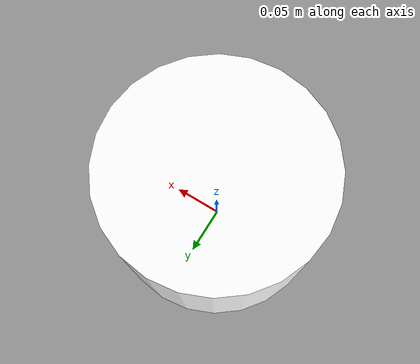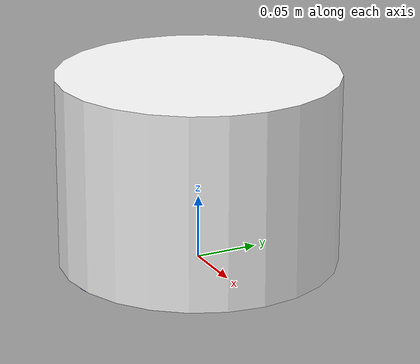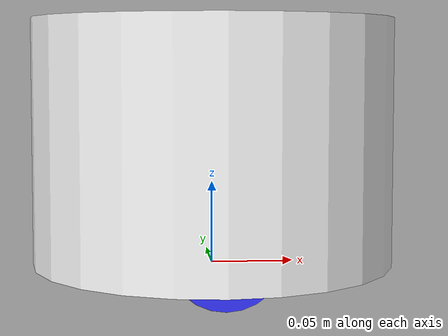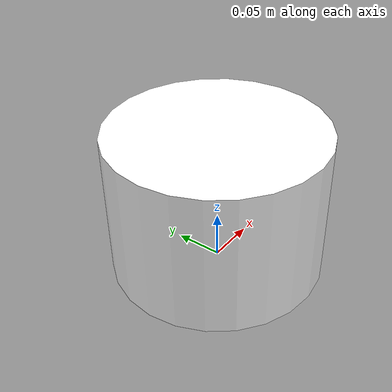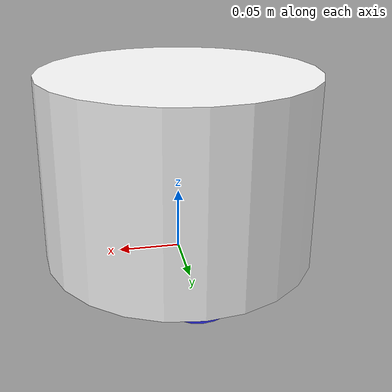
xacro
<?xml version="1.0"?>
<robot xmlns:xacro="http://www.ros.org/wiki/xacro" name="robot">
<xacro:include filename="inertial_macros.xacro"/>

<material name="white">
  <color rgba="1 1 1 1" />
</material>
<material name="orange">
  <color rgba="1 0.3 0.1 1"/>
</material>
<material name="blue">
  <color rgba="0.2 0.2 1 1"/>
</material>
<material name="black">
  <color rgba="0 0 0 1"/>
</material>
<material name="red">
  <color rgba="1 0 0 1"/>
</material>

<link name="base_link">

</link>

<!-- BASE_FOOTPRINT LINK -->
<joint name="base_footprint_joint" type="fixed">
        <parent link="base_link"/>
        <child link="base_footprint"/>
        <origin xyz="0 0 0" rpy="0 0 0"/>
    </joint>

    <link name="base_footprint">
    </link>

<joint name="chassis_joint" type="fixed">
  <parent link="base_link"/>
  <child link="chassis"/>
  <origin xyz="0 0 0"/>
</joint>

<link name="chassis">
  <visual>
    <origin xyz="0 0 0.075"/>
    <geometry>
      <cylinder radius="0.11" length="0.15"/>
    </geometry>
    <material name="white"/>
  </visual>
  <collision>
    <origin xyz="0 0 0.075"/>
    <geometry>
      <cylinder radius="0.11" length="0.15"/>
    </geometry>
  </collision>
  <xacro:inertial_cylinder mass="1.3" length="0.15" radius="0.11">
    <origin xyz="0 0 0" rpy="0 0 0"/>
  </xacro:inertial_cylinder>
</link>

<joint name="left_wheel_joint" type="continuous">
  <parent link="base_link"/>
  <child link="left_wheel"/>
  <origin xyz="0 0.0875 0.0235" rpy="-${pi/2} 0 0" />
  <axis xyz="0 0 1"/>
</joint>
<link name="left_wheel">
  <visual>
    <geometry>
      <cylinder radius="0.0325" length="0.025"/>
    </geometry>
    <material name="blue"/>
  </visual>
  <collision>
    <geometry>
      <cylinder radius="0.0325" length="0.025"/>
    </geometry>
    <surface>
      <friction>
        <ode>
          <mu>2.0</mu>
          <mu2>2.0</mu2>
        </ode>
      </friction>
    </surface>
  </collision>
  <xacro:inertial_cylinder mass="0.05" length="0.025" radius="0.0325">
    <origin xyz="0 0 0" rpy="0 0 0"/>
  </xacro:inertial_cylinder>
</link>
<gazebo reference="left_wheel">
  <mu1>2.0</mu1>
  <mu2>2.0</mu2>
</gazebo>

<joint name="right_wheel_joint" type="continuous">
  <parent link="base_link"/>
  <child link="right_wheel"/>
  <origin xyz="0 -0.0875 0.0235" rpy="${pi/2} 0 0" />
  <axis xyz="0 0 -1"/>
  <dynamics damping="0.1" friction="0.1"/>
</joint>
<link name="right_wheel">
  <visual>
    <geometry>
      <cylinder radius="0.0325" length="0.025"/>
    </geometry>
    <material name="blue"/>
  </visual>
  <collision>
    <geometry>
      <cylinder radius="0.0325" length="0.025"/>
    </geometry>
    <surface>
      <friction>
        <ode>
          <mu>2.0</mu>
          <mu2>2.0</mu2>
        </ode>
      </friction>
    </surface>
  </collision>
  <xacro:inertial_cylinder mass="0.05" length="0.025" radius="0.0325">
    <origin xyz="0 0 0" rpy="0 0 0"/>
  </xacro:inertial_cylinder>
</link>
<gazebo reference="right_wheel">
  <mu1>2.0</mu1>
  <mu2>2.0</mu2>
</gazebo>

<joint name="caster_wheel_joint" type="fixed">
  <parent link="chassis"/>
  <child link="caster_wheel"/>
  <origin xyz="0.08 0 0.001"/>
</joint>
<link name="caster_wheel">
  <visual>
    <geometry>
      <sphere radius="0.01"/>
    </geometry>
    <material name="black"/>
  </visual>
  <collision>
    <geometry>
      <sphere radius="0.01"/>
    </geometry>
    <surface>
      <friction>
        <ode>
          <mu>0.0</mu>
          <mu2>0.0</mu2>
        </ode>
      </friction>
    </surface>
  </collision>
  <xacro:inertial_sphere mass="0.2" radius="0.01">
    <origin xyz="0 0 0" rpy="0 0 0"/>
  </xacro:inertial_sphere>
</link>
<gazebo reference="caster_wheel">
  <mu1>0.001</mu1>
  <mu2>0.001</mu2>
</gazebo>

<transmission name="left_wheel_trans">
  <type>transmission_interface/SimpleTransmission</type>
  <joint name="left_wheel_joint">
    <hardwareInterface>PositionJointInterface</hardwareInterface>
  </joint>
  <actuator name="left_wheel_motor">
    <mechanicalReduction>1</mechanicalReduction>
  </actuator>
</transmission>
<transmission name="right_wheel_trans">
  <type>transmission_interface/SimpleTransmission</type>
  <joint name="right_wheel_joint">
    <hardwareInterface>PositionJointInterface</hardwareInterface>
  </joint>
  <actuator name="right_wheel_motor">
    <mechanicalReduction>1</mechanicalReduction>
  </actuator>
</transmission>
</robot>

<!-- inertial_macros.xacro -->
<robot xmlns:xacro="http://www.ros.org/wiki/xacro">
    <!-- Specify some standard inertial calculations https://en.wikipedia.org/wiki/List_of_moments_of_inertia -->
    <!-- These make use of xacro's mathematical functionality -->

    <xacro:macro name="inertial_sphere" params="mass radius *origin">
        <inertial>
            <xacro:insert_block name="origin"/>
            <mass value="${mass}" />
            <inertia ixx="${(2/5) * mass * (radius*radius)}" ixy="0.0" ixz="0.0"
                    iyy="${(2/5) * mass * (radius*radius)}" iyz="0.0"
                    izz="${(2/5) * mass * (radius*radius)}" />
        </inertial>
    </xacro:macro>

    <xacro:macro name="inertial_box" params="mass x y z *origin">
        <inertial>
            <xacro:insert_block name="origin"/>
            <mass value="${mass}" />
            <inertia ixx="${(1/12) * mass * (y*y+z*z)}" ixy="0.0" ixz="0.0"
                    iyy="${(1/12) * mass * (x*x+z*z)}" iyz="0.0"
                    izz="${(1/12) * mass * (x*x+y*y)}" />
        </inertial>
    </xacro:macro>

    <xacro:macro name="inertial_cylinder" params="mass length radius *origin">
        <inertial>
            <xacro:insert_block name="origin"/>
            <mass value="${mass}" />
            <inertia ixx="${(1/12) * mass * (3*radius*radius + length*length)}" ixy="0.0" ixz="0.0"
                    iyy="${(1/12) * mass * (3*radius*radius + length*length)}" iyz="0.0"
                    izz="${(1/2) * mass * (radius*radius)}" />
        </inertial>
    </xacro:macro>
</robot>
